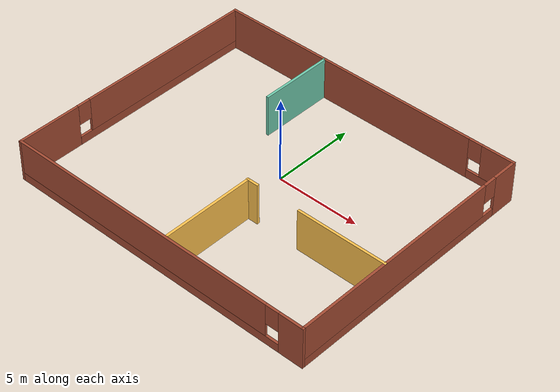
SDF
<?xml version='1.0'?>
<sdf version='1.7'>
  <model name='Building'>
    <pose>0.016436 -1.12625 0 0 -0 0</pose>
    <link name='Wall_10'>
      <pose>-9.425 0 0 0 -0 1.5708</pose>
      <visual name='Wall_10_Visual_0'>
        <pose>-5.8232 0 1.25 0 -0 0</pose>
        <geometry>
          <box>
            <size>3.85359 0.15 2.5</size>
          </box>
        </geometry>
        <material>
          <script>
            <uri>file://media/materials/scripts/gazebo.material</uri>
            <name>Gazebo/Bricks</name>
          </script>
          <ambient>1 1 1 1</ambient>
        </material>
        <meta>
          <layer>0</layer>
        </meta>
      </visual>
      <collision name='Wall_10_Collision_0'>
        <geometry>
          <box>
            <size>3.85359 0.15 2.5</size>
          </box>
        </geometry>
        <pose>-5.8232 0 1.25 0 -0 0</pose>
      </collision>
      <visual name='Wall_10_Visual_1'>
        <pose>1.9268 0 0.25 0 -0 0</pose>
        <geometry>
          <box>
            <size>11.6464 0.15 0.5</size>
          </box>
        </geometry>
        <material>
          <script>
            <uri>file://media/materials/scripts/gazebo.material</uri>
            <name>Gazebo/Bricks</name>
          </script>
          <ambient>1 1 1 1</ambient>
        </material>
        <meta>
          <layer>0</layer>
        </meta>
      </visual>
      <collision name='Wall_10_Collision_1'>
        <geometry>
          <box>
            <size>11.6464 0.15 0.5</size>
          </box>
        </geometry>
        <pose>1.9268 0 0.25 0 -0 0</pose>
      </collision>
      <visual name='Wall_10_Visual_2'>
        <pose>2.3268 0 1.5 0 -0 0</pose>
        <geometry>
          <box>
            <size>10.8464 0.15 2</size>
          </box>
        </geometry>
        <material>
          <script>
            <uri>file://media/materials/scripts/gazebo.material</uri>
            <name>Gazebo/Bricks</name>
          </script>
          <ambient>1 1 1 1</ambient>
        </material>
        <meta>
          <layer>0</layer>
        </meta>
      </visual>
      <collision name='Wall_10_Collision_2'>
        <geometry>
          <box>
            <size>10.8464 0.15 2</size>
          </box>
        </geometry>
        <pose>2.3268 0 1.5 0 -0 0</pose>
      </collision>
      <visual name='Wall_10_Visual_3'>
        <pose>-3.49641 0 1.9 0 -0 0</pose>
        <geometry>
          <box>
            <size>0.8 0.15 1.2</size>
          </box>
        </geometry>
        <material>
          <script>
            <uri>file://media/materials/scripts/gazebo.material</uri>
            <name>Gazebo/Bricks</name>
          </script>
          <ambient>1 1 1 1</ambient>
        </material>
        <meta>
          <layer>0</layer>
        </meta>
      </visual>
      <collision name='Wall_10_Collision_3'>
        <geometry>
          <box>
            <size>0.8 0.15 1.2</size>
          </box>
        </geometry>
        <pose>-3.49641 0 1.9 0 -0 0</pose>
      </collision>
    </link>
    <link name='Wall_12'>
      <collision name='Wall_12_Collision'>
        <geometry>
          <box>
            <size>4.5 0.15 2.5</size>
          </box>
        </geometry>
        <pose>0 0 1.25 0 -0 0</pose>
      </collision>
      <visual name='Wall_12_Visual'>
        <pose>0 0 1.25 0 -0 0</pose>
        <geometry>
          <box>
            <size>4.5 0.15 2.5</size>
          </box>
        </geometry>
        <material>
          <script>
            <uri>file://media/materials/scripts/gazebo.material</uri>
            <name>Gazebo/Grey</name>
          </script>
          <ambient>0.435294 0.796078 0.67451 1</ambient>
        </material>
        <meta>
          <layer>0</layer>
        </meta>
      </visual>
      <pose>-2.89284 5.48192 0 0 -0 -1.5708</pose>
    </link>
    <link name='Wall_17'>
      <pose>5.09313 -2.07245 0 0 -0 3.14159</pose>
      <visual name='Wall_17_Visual_0'>
        <pose>-1.67496 0 1.25 0 -0 0</pose>
        <geometry>
          <box>
            <size>5.43506 0.15 2.5</size>
          </box>
        </geometry>
        <material>
          <script>
            <uri>file://media/materials/scripts/gazebo.material</uri>
            <name>Gazebo/Grey</name>
          </script>
          <ambient>1 0.764706 0.305882 1</ambient>
        </material>
        <meta>
          <layer>0</layer>
        </meta>
      </visual>
      <collision name='Wall_17_Collision_0'>
        <geometry>
          <box>
            <size>5.43506 0.15 2.5</size>
          </box>
        </geometry>
        <pose>-1.67496 0 1.25 0 -0 0</pose>
      </collision>
      <visual name='Wall_17_Visual_1'>
        <pose>4.01253 0 1.25 0 -0 0</pose>
        <geometry>
          <box>
            <size>0.759923 0.15 2.5</size>
          </box>
        </geometry>
        <material>
          <script>
            <uri>file://media/materials/scripts/gazebo.material</uri>
            <name>Gazebo/Grey</name>
          </script>
          <ambient>1 0.764706 0.305882 1</ambient>
        </material>
        <meta>
          <layer>0</layer>
        </meta>
      </visual>
      <collision name='Wall_17_Collision_1'>
        <geometry>
          <box>
            <size>0.759923 0.15 2.5</size>
          </box>
        </geometry>
        <pose>4.01253 0 1.25 0 -0 0</pose>
      </collision>
    </link>
    <link name='Wall_18'>
      <collision name='Wall_18_Collision'>
        <geometry>
          <box>
            <size>5.75 0.15 2.5</size>
          </box>
        </geometry>
        <pose>0 0 1.25 0 -0 0</pose>
      </collision>
      <visual name='Wall_18_Visual'>
        <pose>0 0 1.25 0 -0 0</pose>
        <geometry>
          <box>
            <size>5.75 0.15 2.5</size>
          </box>
        </geometry>
        <material>
          <script>
            <uri>file://media/materials/scripts/gazebo.material</uri>
            <name>Gazebo/Grey</name>
          </script>
          <ambient>1 0.764706 0.305882 1</ambient>
        </material>
        <meta>
          <layer>0</layer>
        </meta>
      </visual>
      <pose>0.793131 -4.87245 0 0 -0 -1.5708</pose>
    </link>
    <link name='Wall_7'>
      <pose>-0 7.675 0 0 -0 0</pose>
      <visual name='Wall_7_Visual_0'>
        <pose>-1.39268 0 1.25 0 -0 0</pose>
        <geometry>
          <box>
            <size>16.2146 0.15 2.5</size>
          </box>
        </geometry>
        <material>
          <script>
            <uri>file://media/materials/scripts/gazebo.material</uri>
            <name>Gazebo/Bricks</name>
          </script>
          <ambient>1 1 1 1</ambient>
        </material>
        <meta>
          <layer>0</layer>
        </meta>
      </visual>
      <collision name='Wall_7_Collision_0'>
        <geometry>
          <box>
            <size>16.2146 0.15 2.5</size>
          </box>
        </geometry>
        <pose>-1.39268 0 1.25 0 -0 0</pose>
      </collision>
      <visual name='Wall_7_Visual_1'>
        <pose>8.10732 0 0.25 0 -0 0</pose>
        <geometry>
          <box>
            <size>2.78535 0.15 0.5</size>
          </box>
        </geometry>
        <material>
          <script>
            <uri>file://media/materials/scripts/gazebo.material</uri>
            <name>Gazebo/Bricks</name>
          </script>
          <ambient>1 1 1 1</ambient>
        </material>
        <meta>
          <layer>0</layer>
        </meta>
      </visual>
      <collision name='Wall_7_Collision_1'>
        <geometry>
          <box>
            <size>2.78535 0.15 0.5</size>
          </box>
        </geometry>
        <pose>8.10732 0 0.25 0 -0 0</pose>
      </collision>
      <visual name='Wall_7_Visual_2'>
        <pose>8.50732 0 1.5 0 -0 0</pose>
        <geometry>
          <box>
            <size>1.98535 0.15 2</size>
          </box>
        </geometry>
        <material>
          <script>
            <uri>file://media/materials/scripts/gazebo.material</uri>
            <name>Gazebo/Bricks</name>
          </script>
          <ambient>1 1 1 1</ambient>
        </material>
        <meta>
          <layer>0</layer>
        </meta>
      </visual>
      <collision name='Wall_7_Collision_2'>
        <geometry>
          <box>
            <size>1.98535 0.15 2</size>
          </box>
        </geometry>
        <pose>8.50732 0 1.5 0 -0 0</pose>
      </collision>
      <visual name='Wall_7_Visual_3'>
        <pose>7.11465 0 1.9 0 -0 0</pose>
        <geometry>
          <box>
            <size>0.8 0.15 1.2</size>
          </box>
        </geometry>
        <material>
          <script>
            <uri>file://media/materials/scripts/gazebo.material</uri>
            <name>Gazebo/Bricks</name>
          </script>
          <ambient>1 1 1 1</ambient>
        </material>
        <meta>
          <layer>0</layer>
        </meta>
      </visual>
      <collision name='Wall_7_Collision_3'>
        <geometry>
          <box>
            <size>0.8 0.15 1.2</size>
          </box>
        </geometry>
        <pose>7.11465 0 1.9 0 -0 0</pose>
      </collision>
    </link>
    <link name='Wall_8'>
      <pose>9.425 0 0 0 -0 -1.5708</pose>
      <visual name='Wall_8_Visual_0'>
        <pose>-6.95523 0 1.25 0 -0 0</pose>
        <geometry>
          <box>
            <size>1.58954 0.15 2.5</size>
          </box>
        </geometry>
        <material>
          <script>
            <uri>file://media/materials/scripts/gazebo.material</uri>
            <name>Gazebo/Bricks</name>
          </script>
          <ambient>1 1 1 1</ambient>
        </material>
        <meta>
          <layer>0</layer>
        </meta>
      </visual>
      <collision name='Wall_8_Collision_0'>
        <geometry>
          <box>
            <size>1.58954 0.15 2.5</size>
          </box>
        </geometry>
        <pose>-6.95523 0 1.25 0 -0 0</pose>
      </collision>
      <visual name='Wall_8_Visual_1'>
        <pose>0.79477 0 0.25 0 -0 0</pose>
        <geometry>
          <box>
            <size>13.9105 0.15 0.5</size>
          </box>
        </geometry>
        <material>
          <script>
            <uri>file://media/materials/scripts/gazebo.material</uri>
            <name>Gazebo/Bricks</name>
          </script>
          <ambient>1 1 1 1</ambient>
        </material>
        <meta>
          <layer>0</layer>
        </meta>
      </visual>
      <collision name='Wall_8_Collision_1'>
        <geometry>
          <box>
            <size>13.9105 0.15 0.5</size>
          </box>
        </geometry>
        <pose>0.79477 0 0.25 0 -0 0</pose>
      </collision>
      <visual name='Wall_8_Visual_2'>
        <pose>1.19477 0 1.5 0 -0 0</pose>
        <geometry>
          <box>
            <size>13.1105 0.15 2</size>
          </box>
        </geometry>
        <material>
          <script>
            <uri>file://media/materials/scripts/gazebo.material</uri>
            <name>Gazebo/Bricks</name>
          </script>
          <ambient>1 1 1 1</ambient>
        </material>
        <meta>
          <layer>0</layer>
        </meta>
      </visual>
      <collision name='Wall_8_Collision_2'>
        <geometry>
          <box>
            <size>13.1105 0.15 2</size>
          </box>
        </geometry>
        <pose>1.19477 0 1.5 0 -0 0</pose>
      </collision>
      <visual name='Wall_8_Visual_3'>
        <pose>-5.76046 0 1.9 0 -0 0</pose>
        <geometry>
          <box>
            <size>0.8 0.15 1.2</size>
          </box>
        </geometry>
        <material>
          <script>
            <uri>file://media/materials/scripts/gazebo.material</uri>
            <name>Gazebo/Bricks</name>
          </script>
          <ambient>1 1 1 1</ambient>
        </material>
        <meta>
          <layer>0</layer>
        </meta>
      </visual>
      <collision name='Wall_8_Collision_3'>
        <geometry>
          <box>
            <size>0.8 0.15 1.2</size>
          </box>
        </geometry>
        <pose>-5.76046 0 1.9 0 -0 0</pose>
      </collision>
    </link>
    <link name='Wall_9'>
      <pose>-0 -7.675 0 0 -0 3.14159</pose>
      <visual name='Wall_9_Visual_0'>
        <pose>-8.76003 0 1.25 0 -0 0</pose>
        <geometry>
          <box>
            <size>1.47995 0.15 2.5</size>
          </box>
        </geometry>
        <material>
          <script>
            <uri>file://media/materials/scripts/gazebo.material</uri>
            <name>Gazebo/Bricks</name>
          </script>
          <ambient>1 1 1 1</ambient>
        </material>
        <meta>
          <layer>0</layer>
        </meta>
      </visual>
      <collision name='Wall_9_Collision_0'>
        <geometry>
          <box>
            <size>1.47995 0.15 2.5</size>
          </box>
        </geometry>
        <pose>-8.76003 0 1.25 0 -0 0</pose>
      </collision>
      <visual name='Wall_9_Visual_1'>
        <pose>0.739975 0 0.25 0 -0 0</pose>
        <geometry>
          <box>
            <size>17.5201 0.15 0.5</size>
          </box>
        </geometry>
        <material>
          <script>
            <uri>file://media/materials/scripts/gazebo.material</uri>
            <name>Gazebo/Bricks</name>
          </script>
          <ambient>1 1 1 1</ambient>
        </material>
        <meta>
          <layer>0</layer>
        </meta>
      </visual>
      <collision name='Wall_9_Collision_1'>
        <geometry>
          <box>
            <size>17.5201 0.15 0.5</size>
          </box>
        </geometry>
        <pose>0.739975 0 0.25 0 -0 0</pose>
      </collision>
      <visual name='Wall_9_Visual_2'>
        <pose>1.13997 0 1.5 0 -0 0</pose>
        <geometry>
          <box>
            <size>16.7201 0.15 2</size>
          </box>
        </geometry>
        <material>
          <script>
            <uri>file://media/materials/scripts/gazebo.material</uri>
            <name>Gazebo/Bricks</name>
          </script>
          <ambient>1 1 1 1</ambient>
        </material>
        <meta>
          <layer>0</layer>
        </meta>
      </visual>
      <collision name='Wall_9_Collision_2'>
        <geometry>
          <box>
            <size>16.7201 0.15 2</size>
          </box>
        </geometry>
        <pose>1.13997 0 1.5 0 -0 0</pose>
      </collision>
      <visual name='Wall_9_Visual_3'>
        <pose>-7.62005 0 1.9 0 -0 0</pose>
        <geometry>
          <box>
            <size>0.8 0.15 1.2</size>
          </box>
        </geometry>
        <material>
          <script>
            <uri>file://media/materials/scripts/gazebo.material</uri>
            <name>Gazebo/Bricks</name>
          </script>
          <ambient>1 1 1 1</ambient>
        </material>
        <meta>
          <layer>0</layer>
        </meta>
      </visual>
      <collision name='Wall_9_Collision_3'>
        <geometry>
          <box>
            <size>0.8 0.15 1.2</size>
          </box>
        </geometry>
        <pose>-7.62005 0 1.9 0 -0 0</pose>
      </collision>
    </link>
    <static>1</static>
  </model>
</sdf>
